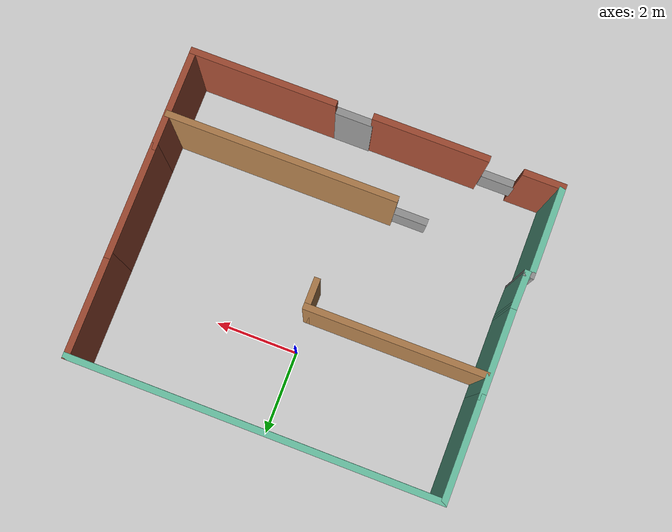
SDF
<?xml version='1.0'?>
<sdf version='1.6'>
  <model name='chase_it'>
    <pose frame=''>0.1 -1.66 0 0 -0 0</pose>
    <link name='Door_0'>
      <collision name='Door_0_Collision'>
        <geometry>
          <box>
            <size>0.9 0.17 2</size>
          </box>
        </geometry>
        <pose frame=''>0 0 1 0 -0 0</pose>
      </collision>
      <visual name='Door_0_Visual'>
        <pose frame=''>0 0 1 0 -0 0</pose>
        <geometry>
          <box>
            <size>0.9 0.17 2</size>
          </box>
        </geometry>
        <material>
          <script>
            <uri>file://media/materials/scripts/gazebo.material</uri>
            <name>Gazebo/Grey</name>
          </script>
        </material>
      </visual>
      <pose frame=''>0.49 -3.65 0 0 -0 0</pose>
    </link>
    <link name='Wall_0'>
      <collision name='Wall_0_Collision'>
        <geometry>
          <box>
            <size>2.25 0.15 2.5</size>
          </box>
        </geometry>
        <pose frame=''>0 0 1.25 0 -0 0</pose>
      </collision>
      <visual name='Wall_0_Visual'>
        <pose frame=''>0 0 1.25 0 -0 0</pose>
        <geometry>
          <box>
            <size>2.25 0.15 2.5</size>
          </box>
        </geometry>
        <material>
          <script>
            <uri>file://media/materials/scripts/gazebo.material</uri>
            <name>Gazebo/Grey</name>
          </script>
          <ambient>0.435294 0.796078 0.67451 1</ambient>
        </material>
        <meta>
          <layer>0</layer>
        </meta>
      </visual>
      <pose frame=''>-4.24 0.26 0 0 -0 1.5708</pose>
    </link>
    <link name='Wall_11'>
      <collision name='Wall_11_Collision'>
        <geometry>
          <box>
            <size>2.5 0.15 2.5</size>
          </box>
        </geometry>
        <pose frame=''>0 0 1.25 0 -0 0</pose>
      </collision>
      <visual name='Wall_11_Visual'>
        <pose frame=''>0 0 1.25 0 -0 0</pose>
        <geometry>
          <box>
            <size>2.5 0.15 2.5</size>
          </box>
        </geometry>
        <material>
          <script>
            <uri>file://media/materials/scripts/gazebo.material</uri>
            <name>Gazebo/Bricks</name>
          </script>
          <ambient>1 1 1 1</ambient>
        </material>
        <meta>
          <layer>0</layer>
        </meta>
      </visual>
      <pose frame=''>4.36 -2.465 0 0 0 -1.5708</pose>
    </link>
    <link name='Wall_12'>
      <collision name='Wall_12_Collision'>
        <geometry>
          <box>
            <size>3.5 0.15 2.5</size>
          </box>
        </geometry>
        <pose frame=''>0 0 1.25 0 -0 0</pose>
      </collision>
      <visual name='Wall_12_Visual'>
        <pose frame=''>0 0 1.25 0 -0 0</pose>
        <geometry>
          <box>
            <size>3.5 0.15 2.5</size>
          </box>
        </geometry>
        <material>
          <script>
            <uri>file://media/materials/scripts/gazebo.material</uri>
            <name>Gazebo/Bricks</name>
          </script>
          <ambient>1 1 1 1</ambient>
        </material>
        <meta>
          <layer>0</layer>
        </meta>
      </visual>
      <pose frame=''>2.685 -3.64 0 0 -0 3.14159</pose>
    </link>
    <link name='Wall_14'>
      <collision name='Wall_14_Collision'>
        <geometry>
          <box>
            <size>2.75 0.15 2.5</size>
          </box>
        </geometry>
        <pose frame=''>0 0 1.25 0 -0 0</pose>
      </collision>
      <visual name='Wall_14_Visual'>
        <pose frame=''>0 0 1.25 0 -0 0</pose>
        <geometry>
          <box>
            <size>2.75 0.15 2.5</size>
          </box>
        </geometry>
        <material>
          <script>
            <uri>file://media/materials/scripts/gazebo.material</uri>
            <name>Gazebo/Bricks</name>
          </script>
          <ambient>1 1 1 1</ambient>
        </material>
        <meta>
          <layer>0</layer>
        </meta>
      </visual>
      <pose frame=''>-1.29 -3.66 0 0 -0 3.14159</pose>
    </link>
    <link name='Wall_16'>
      <collision name='Wall_16_Collision'>
        <geometry>
          <box>
            <size>1 0.15 2.5</size>
          </box>
        </geometry>
        <pose frame=''>0 0 1.25 0 -0 0</pose>
      </collision>
      <visual name='Wall_16_Visual'>
        <pose frame=''>0 0 1.25 0 -0 0</pose>
        <geometry>
          <box>
            <size>1 0.15 2.5</size>
          </box>
        </geometry>
        <material>
          <script>
            <uri>file://media/materials/scripts/gazebo.material</uri>
            <name>Gazebo/Bricks</name>
          </script>
          <ambient>1 1 1 1</ambient>
        </material>
        <meta>
          <layer>0</layer>
        </meta>
      </visual>
      <pose frame=''>-3.935 -3.65 0 0 -0 3.14159</pose>
    </link>
    <link name='Wall_17'>
      <collision name='Wall_17_Collision'>
        <geometry>
          <box>
            <size>2.25 0.15 2.5</size>
          </box>
        </geometry>
        <pose frame=''>0 0 1.25 0 -0 0</pose>
      </collision>
      <visual name='Wall_17_Visual'>
        <pose frame=''>0 0 1.25 0 -0 0</pose>
        <geometry>
          <box>
            <size>2.25 0.15 2.5</size>
          </box>
        </geometry>
        <material>
          <script>
            <uri>file://media/materials/scripts/gazebo.material</uri>
            <name>Gazebo/Grey</name>
          </script>
          <ambient>0.435294 0.796078 0.67451 1</ambient>
        </material>
        <meta>
          <layer>0</layer>
        </meta>
      </visual>
      <pose frame=''>-4.36 -2.6 0 0 -0 1.5708</pose>
    </link>
    <link name='Wall_19'>
      <collision name='Wall_19_Collision'>
        <geometry>
          <box>
            <size>0.25 0.15 2.5</size>
          </box>
        </geometry>
        <pose frame=''>0 0 1.25 0 -0 0</pose>
      </collision>
      <visual name='Wall_19_Visual'>
        <pose frame=''>0 0 1.25 0 -0 0</pose>
        <geometry>
          <box>
            <size>0.25 0.15 2.5</size>
          </box>
        </geometry>
        <material>
          <script>
            <uri>file://media/materials/scripts/gazebo.material</uri>
            <name>Gazebo/Grey</name>
          </script>
          <ambient>1 1 1 1</ambient>
        </material>
        <meta>
          <layer>0</layer>
        </meta>
      </visual>
      <pose frame=''>-4.31 -1.55 0 0 -0 0</pose>
    </link>
    <link name='Wall_2'>
      <collision name='Wall_2_Collision'>
        <geometry>
          <box>
            <size>4.25 0.15 2.5</size>
          </box>
        </geometry>
        <pose frame=''>0 0 1.25 0 -0 0</pose>
      </collision>
      <visual name='Wall_2_Visual'>
        <pose frame=''>0 0 1.25 0 -0 0</pose>
        <geometry>
          <box>
            <size>4.25 0.15 2.5</size>
          </box>
        </geometry>
        <material>
          <script>
            <uri>file://media/materials/scripts/gazebo.material</uri>
            <name>Gazebo/Wood</name>
          </script>
          <ambient>1 1 1 1</ambient>
        </material>
        <meta>
          <layer>0</layer>
        </meta>
      </visual>
      <pose frame=''>-2.11 0.83 0 0 -0 0</pose>
    </link>
    <link name='Wall_20'>
      <collision name='Wall_20_Collision'>
        <geometry>
          <box>
            <size>0.910263 0.15 2.5</size>
          </box>
        </geometry>
        <pose frame=''>0 0 1.25 0 -0 0</pose>
      </collision>
      <visual name='Wall_20_Visual'>
        <pose frame=''>0 0 1.25 0 -0 0</pose>
        <geometry>
          <box>
            <size>0.910263 0.15 2.5</size>
          </box>
        </geometry>
        <material>
          <script>
            <uri>file://media/materials/scripts/gazebo.material</uri>
            <name>Gazebo/Grey</name>
          </script>
          <ambient>0.435294 0.796078 0.67451 1</ambient>
        </material>
        <meta>
          <layer>0</layer>
        </meta>
      </visual>
      <pose frame=''>-4.25 -1.17 0 0 -0 1.54449</pose>
    </link>
    <link name='Wall_22'>
      <collision name='Wall_22_Collision'>
        <geometry>
          <box>
            <size>5.5 0.15 2.5</size>
          </box>
        </geometry>
        <pose frame=''>0 0 1.25 0 -0 0</pose>
      </collision>
      <visual name='Wall_22_Visual'>
        <pose frame=''>0 0 1.25 0 -0 0</pose>
        <geometry>
          <box>
            <size>5.5 0.15 2.5</size>
          </box>
        </geometry>
        <material>
          <script>
            <uri>file://media/materials/scripts/gazebo.material</uri>
            <name>Gazebo/Wood</name>
          </script>
          <ambient>1 1 1 1</ambient>
        </material>
        <meta>
          <layer>0</layer>
        </meta>
      </visual>
      <pose frame=''>1.655 -2.09 0 0 -0 3.14159</pose>
    </link>
    <link name='Wall_3'>
      <collision name='Wall_3_Collision'>
        <geometry>
          <box>
            <size>0.75 0.15 2.5</size>
          </box>
        </geometry>
        <pose frame=''>0 0 1.25 0 -0 0</pose>
      </collision>
      <visual name='Wall_3_Visual'>
        <pose frame=''>0 0 1.25 0 -0 0</pose>
        <geometry>
          <box>
            <size>0.75 0.15 2.5</size>
          </box>
        </geometry>
        <material>
          <script>
            <uri>file://media/materials/scripts/gazebo.material</uri>
            <name>Gazebo/Wood</name>
          </script>
          <ambient>1 1 1 1</ambient>
        </material>
        <meta>
          <layer>0</layer>
        </meta>
      </visual>
      <pose frame=''>-0.06 0.53 0 0 0 -1.5708</pose>
    </link>
    <link name='Wall_5'>
      <collision name='Wall_5_Collision'>
        <geometry>
          <box>
            <size>2.5 0.15 2.5</size>
          </box>
        </geometry>
        <pose frame=''>0 0 1.25 0 -0 0</pose>
      </collision>
      <visual name='Wall_5_Visual'>
        <pose frame=''>0 0 1.25 0 -0 0</pose>
        <geometry>
          <box>
            <size>2.5 0.15 2.5</size>
          </box>
        </geometry>
        <material>
          <script>
            <uri>file://media/materials/scripts/gazebo.material</uri>
            <name>Gazebo/Grey</name>
          </script>
          <ambient>0.435294 0.796078 0.67451 1</ambient>
        </material>
        <meta>
          <layer>0</layer>
        </meta>
      </visual>
      <pose frame=''>-4.24 2.485 0 0 -0 1.5708</pose>
    </link>
    <link name='Wall_6'>
      <collision name='Wall_6_Collision'>
        <geometry>
          <box>
            <size>8.75 0.15 2.5</size>
          </box>
        </geometry>
        <pose frame=''>0 0 1.25 0 -0 0</pose>
      </collision>
      <visual name='Wall_6_Visual'>
        <pose frame=''>0 0 1.25 0 -0 0</pose>
        <geometry>
          <box>
            <size>8.75 0.15 2.5</size>
          </box>
        </geometry>
        <material>
          <script>
            <uri>file://media/materials/scripts/gazebo.material</uri>
            <name>Gazebo/Grey</name>
          </script>
          <ambient>0.435294 0.796078 0.67451 1</ambient>
        </material>
        <meta>
          <layer>0</layer>
        </meta>
      </visual>
      <pose frame=''>0.06 3.66 0 0 -0 0</pose>
    </link>
    <link name='Wall_7'>
      <collision name='Wall_7_Collision'>
        <geometry>
          <box>
            <size>2.5 0.15 2.5</size>
          </box>
        </geometry>
        <pose frame=''>0 0 1.25 0 -0 0</pose>
      </collision>
      <visual name='Wall_7_Visual'>
        <pose frame=''>0 0 1.25 0 -0 0</pose>
        <geometry>
          <box>
            <size>2.5 0.15 2.5</size>
          </box>
        </geometry>
        <material>
          <script>
            <uri>file://media/materials/scripts/gazebo.material</uri>
            <name>Gazebo/Bricks</name>
          </script>
          <ambient>1 1 1 1</ambient>
        </material>
        <meta>
          <layer>0</layer>
        </meta>
      </visual>
      <pose frame=''>4.36 2.485 0 0 0 -1.5708</pose>
    </link>
    <link name='Wall_9'>
      <collision name='Wall_9_Collision'>
        <geometry>
          <box>
            <size>2.75 0.15 2.5</size>
          </box>
        </geometry>
        <pose frame=''>0 0 1.25 0 -0 0</pose>
      </collision>
      <visual name='Wall_9_Visual'>
        <pose frame=''>0 0 1.25 0 -0 0</pose>
        <geometry>
          <box>
            <size>2.75 0.15 2.5</size>
          </box>
        </geometry>
        <material>
          <script>
            <uri>file://media/materials/scripts/gazebo.material</uri>
            <name>Gazebo/Bricks</name>
          </script>
          <ambient>1 1 1 1</ambient>
        </material>
        <meta>
          <layer>0</layer>
        </meta>
      </visual>
      <pose frame=''>4.36 0.01 0 0 0 -1.5708</pose>
    </link>
    <link name='Window_0'>
      <collision name='Window_0_Collision'>
        <geometry>
          <box>
            <size>0.8 0.17 0.8</size>
          </box>
        </geometry>
        <pose frame=''>0 0 0.4 0 -0 0</pose>
      </collision>
      <visual name='Window_0_Visual'>
        <pose frame=''>0 0 0.4 0 -0 0</pose>
        <geometry>
          <box>
            <size>0.8 0.17 0.8</size>
          </box>
        </geometry>
        <material>
          <script>
            <uri>file://media/materials/scripts/gazebo.material</uri>
            <name>Gazebo/Grey</name>
          </script>
        </material>
      </visual>
      <pose frame=''>-3.07 -3.66 0.5 0 -0 0</pose>
    </link>
    <link name='Window_1'>
      <collision name='Window_1_Collision'>
        <geometry>
          <box>
            <size>0.8 0.17 0.8</size>
          </box>
        </geometry>
        <pose frame=''>0 0 0.4 0 -0 0</pose>
      </collision>
      <visual name='Window_1_Visual'>
        <pose frame=''>0 0 0.4 0 -0 0</pose>
        <geometry>
          <box>
            <size>0.8 0.17 0.8</size>
          </box>
        </geometry>
        <material>
          <script>
            <uri>file://media/materials/scripts/gazebo.material</uri>
            <name>Gazebo/Grey</name>
          </script>
        </material>
      </visual>
      <pose frame=''>-1.49 -2.11 0.5 0 -0 0</pose>
    </link>
    <static>1</static>
  </model>
</sdf>
